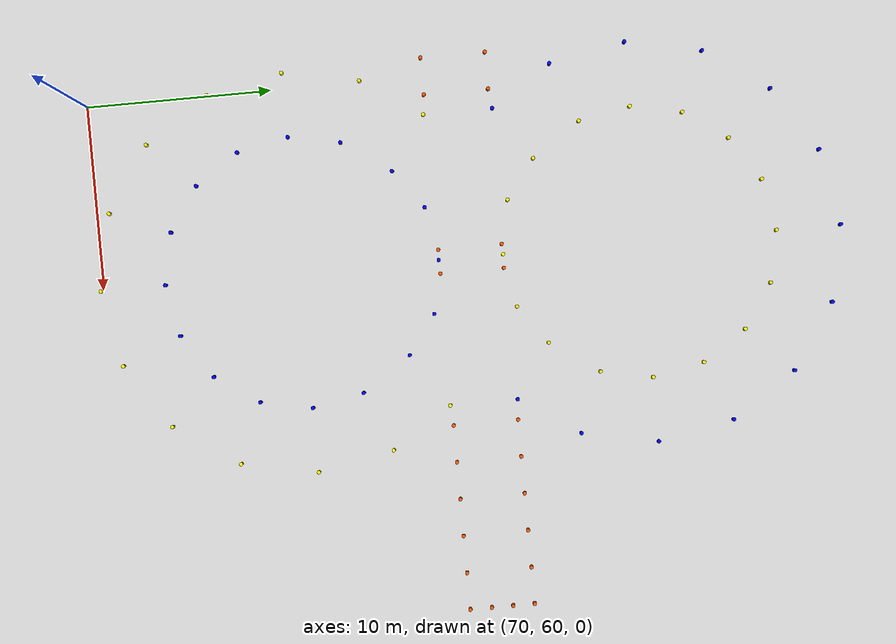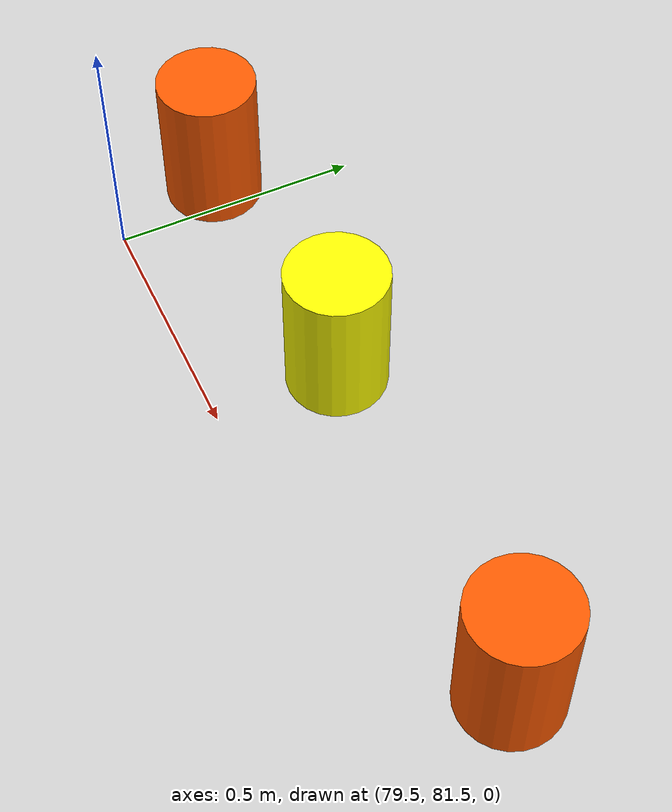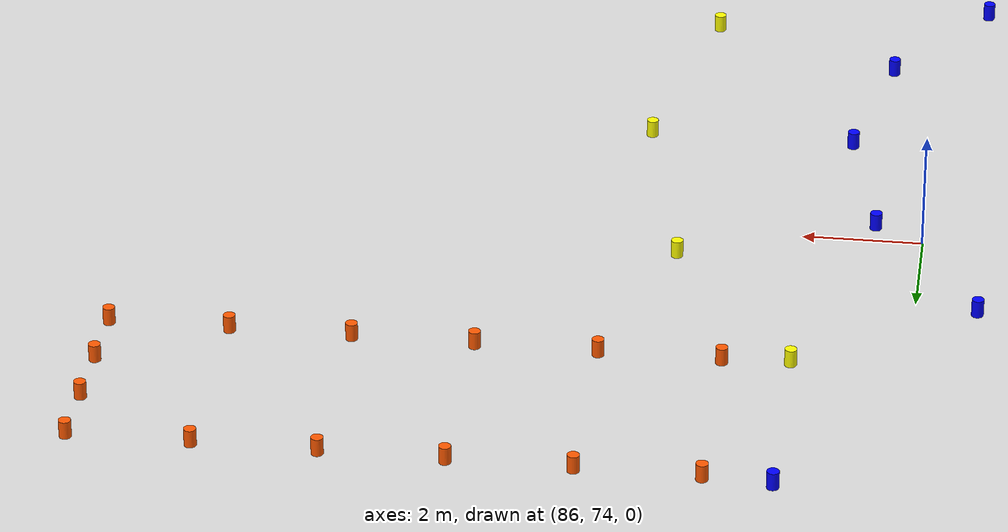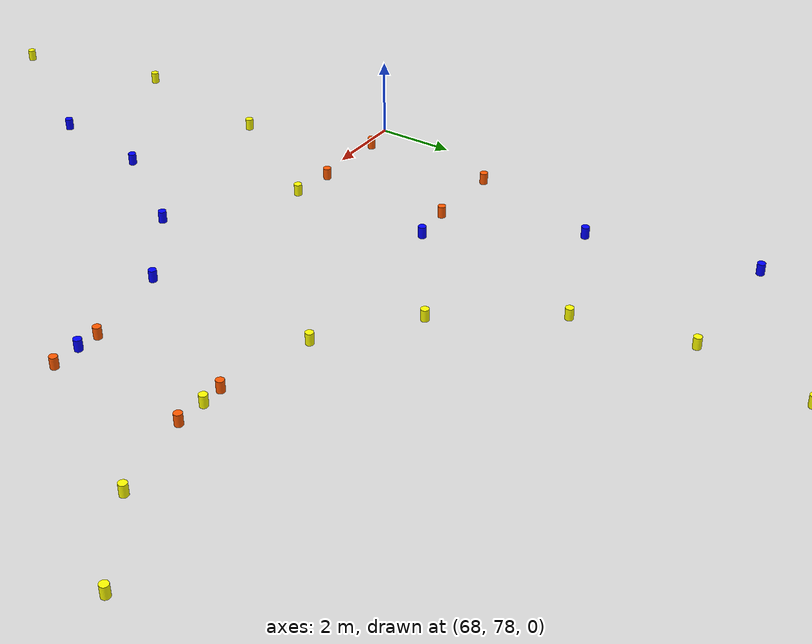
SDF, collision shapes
<?xml version="1.0"?>
<sdf version="1.7">
  <model name="track_skidpad">
    <static>true</static>

    <include>
      <uri>model://cone_yellow</uri>
      <name>cone_yellow_001</name>
      <pose>80.000 81.750 0.000 0 0 0.000</pose>
    </include>
    <include>
      <uri>model://cone_blue</uri>
      <name>cone_blue_001</name>
      <pose>80.000 78.250 0.000 0 0 0.000</pose>
    </include>
    <include>
      <uri>model://cone_orange</uri>
      <name>cone_orange_001</name>
      <pose>79.439 78.274 0.000 0 0 0.000</pose>
    </include>
    <include>
      <uri>model://cone_orange</uri>
      <name>cone_orange_002</name>
      <pose>79.439 81.726 0.000 0 0 0.000</pose>
    </include>
    <include>
      <uri>model://cone_orange</uri>
      <name>cone_orange_003</name>
      <pose>80.739 81.726 0.000 0 0 0.000</pose>
    </include>
    <include>
      <uri>model://cone_orange</uri>
      <name>cone_orange_004</name>
      <pose>80.739 78.274 0.000 0 0 0.000</pose>
    </include>
    <include>
      <uri>model://cone_orange</uri>
      <name>cone_orange_005</name>
      <pose>71.000 78.250 0.000 0 0 0.000</pose>
    </include>
    <include>
      <uri>model://cone_orange</uri>
      <name>cone_orange_006</name>
      <pose>69.000 78.250 0.000 0 0 0.000</pose>
    </include>
    <include>
      <uri>model://cone_orange</uri>
      <name>cone_orange_007</name>
      <pose>71.000 81.750 0.000 0 0 0.000</pose>
    </include>
    <include>
      <uri>model://cone_orange</uri>
      <name>cone_orange_008</name>
      <pose>69.000 81.750 0.000 0 0 0.000</pose>
    </include>
    <include>
      <uri>model://cone_yellow</uri>
      <name>cone_yellow_002</name>
      <pose>87.898 78.166 0.000 0 0 0.000</pose>
    </include>
    <include>
      <uri>model://cone_yellow</uri>
      <name>cone_yellow_003</name>
      <pose>90.038 74.900 0.000 0 0 0.000</pose>
    </include>
    <include>
      <uri>model://cone_yellow</uri>
      <name>cone_yellow_004</name>
      <pose>90.861 70.752 0.000 0 0 0.000</pose>
    </include>
    <include>
      <uri>model://cone_yellow</uri>
      <name>cone_yellow_005</name>
      <pose>90.039 66.603 0.000 0 0 0.000</pose>
    </include>
    <include>
      <uri>model://cone_yellow</uri>
      <name>cone_yellow_006</name>
      <pose>87.694 63.083 0.000 0 0 0.000</pose>
    </include>
    <include>
      <uri>model://cone_yellow</uri>
      <name>cone_yellow_007</name>
      <pose>84.183 60.725 0.000 0 0 0.000</pose>
    </include>
    <include>
      <uri>model://cone_yellow</uri>
      <name>cone_yellow_008</name>
      <pose>80.037 59.888 0.000 0 0 0.000</pose>
    </include>
    <include>
      <uri>model://cone_yellow</uri>
      <name>cone_yellow_009</name>
      <pose>75.885 60.697 0.000 0 0 0.000</pose>
    </include>
    <include>
      <uri>model://cone_yellow</uri>
      <name>cone_yellow_010</name>
      <pose>72.358 63.031 0.000 0 0 0.000</pose>
    </include>
    <include>
      <uri>model://cone_yellow</uri>
      <name>cone_yellow_011</name>
      <pose>69.989 66.535 0.000 0 0 0.000</pose>
    </include>
    <include>
      <uri>model://cone_yellow</uri>
      <name>cone_yellow_012</name>
      <pose>69.138 70.678 0.000 0 0 0.000</pose>
    </include>
    <include>
      <uri>model://cone_yellow</uri>
      <name>cone_yellow_013</name>
      <pose>69.934 74.832 0.000 0 0 0.000</pose>
    </include>
    <include>
      <uri>model://cone_yellow</uri>
      <name>cone_yellow_014</name>
      <pose>72.074 78.125 0.000 0 0 0.000</pose>
    </include>
    <include>
      <uri>model://cone_blue</uri>
      <name>cone_blue_002</name>
      <pose>84.988 76.221 0.000 0 0 0.000</pose>
    </include>
    <include>
      <uri>model://cone_blue</uri>
      <name>cone_blue_003</name>
      <pose>86.803 73.564 0.000 0 0 0.000</pose>
    </include>
    <include>
      <uri>model://cone_blue</uri>
      <name>cone_blue_004</name>
      <pose>87.361 70.751 0.000 0 0 0.000</pose>
    </include>
    <include>
      <uri>model://cone_blue</uri>
      <name>cone_blue_005</name>
      <pose>86.804 67.939 0.000 0 0 0.000</pose>
    </include>
    <include>
      <uri>model://cone_blue</uri>
      <name>cone_blue_006</name>
      <pose>85.214 65.553 0.000 0 0 0.000</pose>
    </include>
    <include>
      <uri>model://cone_blue</uri>
      <name>cone_blue_007</name>
      <pose>82.834 63.955 0.000 0 0 0.000</pose>
    </include>
    <include>
      <uri>model://cone_blue</uri>
      <name>cone_blue_008</name>
      <pose>80.024 63.388 0.000 0 0 0.000</pose>
    </include>
    <include>
      <uri>model://cone_blue</uri>
      <name>cone_blue_009</name>
      <pose>77.210 63.937 0.000 0 0 0.000</pose>
    </include>
    <include>
      <uri>model://cone_blue</uri>
      <name>cone_blue_010</name>
      <pose>74.819 65.520 0.000 0 0 0.000</pose>
    </include>
    <include>
      <uri>model://cone_blue</uri>
      <name>cone_blue_011</name>
      <pose>73.214 67.895 0.000 0 0 0.000</pose>
    </include>
    <include>
      <uri>model://cone_blue</uri>
      <name>cone_blue_012</name>
      <pose>72.638 70.704 0.000 0 0 0.000</pose>
    </include>
    <include>
      <uri>model://cone_blue</uri>
      <name>cone_blue_013</name>
      <pose>73.178 73.519 0.000 0 0 0.000</pose>
    </include>
    <include>
      <uri>model://cone_blue</uri>
      <name>cone_blue_014</name>
      <pose>74.971 76.161 0.000 0 0 0.000</pose>
    </include>
    <include>
      <uri>model://cone_yellow</uri>
      <name>cone_yellow_015</name>
      <pose>84.988 83.779 0.000 0 0 0.000</pose>
    </include>
    <include>
      <uri>model://cone_yellow</uri>
      <name>cone_yellow_016</name>
      <pose>86.803 86.436 0.000 0 0 0.000</pose>
    </include>
    <include>
      <uri>model://cone_yellow</uri>
      <name>cone_yellow_017</name>
      <pose>87.361 89.249 0.000 0 0 0.000</pose>
    </include>
    <include>
      <uri>model://cone_yellow</uri>
      <name>cone_yellow_018</name>
      <pose>86.804 92.061 0.000 0 0 0.000</pose>
    </include>
    <include>
      <uri>model://cone_yellow</uri>
      <name>cone_yellow_019</name>
      <pose>85.214 94.447 0.000 0 0 0.000</pose>
    </include>
    <include>
      <uri>model://cone_yellow</uri>
      <name>cone_yellow_020</name>
      <pose>82.834 96.045 0.000 0 0 0.000</pose>
    </include>
    <include>
      <uri>model://cone_yellow</uri>
      <name>cone_yellow_021</name>
      <pose>80.024 96.612 0.000 0 0 0.000</pose>
    </include>
    <include>
      <uri>model://cone_yellow</uri>
      <name>cone_yellow_022</name>
      <pose>77.210 96.063 0.000 0 0 0.000</pose>
    </include>
    <include>
      <uri>model://cone_yellow</uri>
      <name>cone_yellow_023</name>
      <pose>74.819 94.480 0.000 0 0 0.000</pose>
    </include>
    <include>
      <uri>model://cone_yellow</uri>
      <name>cone_yellow_024</name>
      <pose>73.214 92.105 0.000 0 0 0.000</pose>
    </include>
    <include>
      <uri>model://cone_yellow</uri>
      <name>cone_yellow_025</name>
      <pose>72.638 89.296 0.000 0 0 0.000</pose>
    </include>
    <include>
      <uri>model://cone_yellow</uri>
      <name>cone_yellow_026</name>
      <pose>73.178 86.481 0.000 0 0 0.000</pose>
    </include>
    <include>
      <uri>model://cone_yellow</uri>
      <name>cone_yellow_027</name>
      <pose>74.971 83.839 0.000 0 0 0.000</pose>
    </include>
    <include>
      <uri>model://cone_blue</uri>
      <name>cone_blue_015</name>
      <pose>87.898 81.834 0.000 0 0 0.000</pose>
    </include>
    <include>
      <uri>model://cone_blue</uri>
      <name>cone_blue_016</name>
      <pose>90.038 85.100 0.000 0 0 0.000</pose>
    </include>
    <include>
      <uri>model://cone_blue</uri>
      <name>cone_blue_017</name>
      <pose>90.861 89.248 0.000 0 0 0.000</pose>
    </include>
    <include>
      <uri>model://cone_blue</uri>
      <name>cone_blue_018</name>
      <pose>90.039 93.397 0.000 0 0 0.000</pose>
    </include>
    <include>
      <uri>model://cone_blue</uri>
      <name>cone_blue_019</name>
      <pose>87.694 96.917 0.000 0 0 0.000</pose>
    </include>
    <include>
      <uri>model://cone_blue</uri>
      <name>cone_blue_020</name>
      <pose>84.183 99.275 0.000 0 0 0.000</pose>
    </include>
    <include>
      <uri>model://cone_blue</uri>
      <name>cone_blue_021</name>
      <pose>80.037 100.112 0.000 0 0 0.000</pose>
    </include>
    <include>
      <uri>model://cone_blue</uri>
      <name>cone_blue_022</name>
      <pose>75.885 99.303 0.000 0 0 0.000</pose>
    </include>
    <include>
      <uri>model://cone_blue</uri>
      <name>cone_blue_023</name>
      <pose>72.358 96.969 0.000 0 0 0.000</pose>
    </include>
    <include>
      <uri>model://cone_blue</uri>
      <name>cone_blue_024</name>
      <pose>69.989 93.465 0.000 0 0 0.000</pose>
    </include>
    <include>
      <uri>model://cone_blue</uri>
      <name>cone_blue_025</name>
      <pose>69.138 89.322 0.000 0 0 0.000</pose>
    </include>
    <include>
      <uri>model://cone_blue</uri>
      <name>cone_blue_026</name>
      <pose>69.934 85.168 0.000 0 0 0.000</pose>
    </include>
    <include>
      <uri>model://cone_blue</uri>
      <name>cone_blue_027</name>
      <pose>72.074 81.875 0.000 0 0 0.000</pose>
    </include>
    <include>
      <uri>model://cone_yellow</uri>
      <name>cone_yellow_028</name>
      <pose>77.087 82.250 0.000 0 0 0.000</pose>
    </include>
    <include>
      <uri>model://cone_yellow</uri>
      <name>cone_yellow_029</name>
      <pose>82.887 82.250 0.000 0 0 0.000</pose>
    </include>
    <include>
      <uri>model://cone_blue</uri>
      <name>cone_blue_028</name>
      <pose>77.087 77.750 0.000 0 0 0.000</pose>
    </include>
    <include>
      <uri>model://cone_blue</uri>
      <name>cone_blue_029</name>
      <pose>82.887 77.750 0.000 0 0 0.000</pose>
    </include>
    <include>
      <uri>model://cone_orange</uri>
      <name>cone_orange_009</name>
      <pose>89.000 81.750 0.000 0 0 0.000</pose>
    </include>
    <include>
      <uri>model://cone_orange</uri>
      <name>cone_orange_010</name>
      <pose>90.997 81.750 0.000 0 0 0.000</pose>
    </include>
    <include>
      <uri>model://cone_orange</uri>
      <name>cone_orange_011</name>
      <pose>93.001 81.750 0.000 0 0 0.000</pose>
    </include>
    <include>
      <uri>model://cone_orange</uri>
      <name>cone_orange_012</name>
      <pose>95.007 81.750 0.000 0 0 0.000</pose>
    </include>
    <include>
      <uri>model://cone_orange</uri>
      <name>cone_orange_013</name>
      <pose>97.013 81.750 0.000 0 0 0.000</pose>
    </include>
    <include>
      <uri>model://cone_orange</uri>
      <name>cone_orange_014</name>
      <pose>99.000 81.750 0.000 0 0 0.000</pose>
    </include>
    <include>
      <uri>model://cone_orange</uri>
      <name>cone_orange_015</name>
      <pose>89.000 78.250 0.000 0 0 0.000</pose>
    </include>
    <include>
      <uri>model://cone_orange</uri>
      <name>cone_orange_016</name>
      <pose>90.997 78.250 0.000 0 0 0.000</pose>
    </include>
    <include>
      <uri>model://cone_orange</uri>
      <name>cone_orange_017</name>
      <pose>93.001 78.250 0.000 0 0 0.000</pose>
    </include>
    <include>
      <uri>model://cone_orange</uri>
      <name>cone_orange_018</name>
      <pose>95.007 78.250 0.000 0 0 0.000</pose>
    </include>
    <include>
      <uri>model://cone_orange</uri>
      <name>cone_orange_019</name>
      <pose>97.013 78.250 0.000 0 0 0.000</pose>
    </include>
    <include>
      <uri>model://cone_orange</uri>
      <name>cone_orange_020</name>
      <pose>99.000 78.250 0.000 0 0 0.000</pose>
    </include>
    <include>
      <uri>model://cone_orange</uri>
      <name>cone_orange_021</name>
      <pose>99.000 80.580 0.000 0 0 0.000</pose>
    </include>
    <include>
      <uri>model://cone_orange</uri>
      <name>cone_orange_022</name>
      <pose>99.000 79.420 0.000 0 0 0.000</pose>
    </include>

  </model>
</sdf>

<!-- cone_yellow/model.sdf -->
<sdf version="1.6">
  <model name="cone_yellow">
    <static>1</static>
    <link name="link">

      <visual name="visual">
        <pose>0 0 0 0 0 0</pose>
        <geometry>
          <mesh>
            <uri>model://cone_yellow/meshes/cone.stl</uri>
            <scale>0.005 0.005 0.005</scale>
          </mesh>
        </geometry>
        <material>
          <ambient>1.0 1.0 0.0 1</ambient>
          <diffuse>1.0 1.0 0.0 1</diffuse>
        </material>
      </visual>

      <collision name="collision">
        <pose>0 0 0.15 0 0 0</pose>
        <geometry>
          <cylinder>
            <radius>0.1</radius>
            <length>0.3</length>
          </cylinder>
        </geometry>
        <surface>
          <friction>
            <ode>
              <mu>0.9</mu> <mu2>0.9</mu2> </ode>
          </friction>
        </surface>
      </collision>

      <inertial>
        <pose>0 0 0.05 0 0 0</pose>
        <mass>1</mass>
        <inertia>
          <ixx>0.01</ixx> <iyy>0.01</iyy> <izz>0.005</izz>
          <ixy>0.0</ixy> <ixz>0.0</ixz> <iyz>0.0</iyz>
        </inertia>
      </inertial>

    </link>
  </model>
</sdf>

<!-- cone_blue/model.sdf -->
<sdf version="1.6">
  <model name="cone_blue">
    <static>1</static>
    <link name="link">

      <inertial>
        <pose>0 0 0.05 0 0 0</pose> <mass>1</mass>
        <inertia>
          <ixx>0.01</ixx> <iyy>0.01</iyy> <izz>0.005</izz>
          <ixy>0.0</ixy> <ixz>0.0</ixz> <iyz>0.0</iyz>
        </inertia>
      </inertial>

      <collision name="collision">
        <pose>0 0 0.15 0 0 0</pose>
        <geometry>
          <cylinder>
            <radius>0.1</radius>
            <length>0.3</length>
          </cylinder>
        </geometry>
      </collision>

      <visual name="visual">
        <pose>0 0 0 0 0 0</pose>
        <geometry>
          <mesh>
            <uri>model://cone_blue/meshes/cone.stl</uri>
            <scale>0.005 0.005 0.005</scale>
          </mesh>
        </geometry>
        <material>
          <ambient>0.0 0.0 1.0 1</ambient>
          <diffuse>0.0 0.0 1.0 1</diffuse>
        </material>
      </visual>

    </link>
  </model>
</sdf>

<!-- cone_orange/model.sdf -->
<sdf version="1.6">
  <model name="cone_orange">
    <static>1</static>
    <link name="link">

      <visual name="visual">
        <pose>0 0 0 0 0 0</pose>
        <geometry>
          <mesh>
            <uri>model://cone_orange/meshes/cone.stl</uri>
            <scale>0.005 0.005 0.005</scale>
          </mesh>
        </geometry>
        <material>
          <ambient>1.0 0.35 0.0 1</ambient>
          <diffuse>1.0 0.35 0.0 1</diffuse>
        </material>
      </visual>

      <collision name="collision">
        <pose>0 0 0.15 0 0 0</pose>
        <geometry>
          <cylinder>
            <radius>0.1</radius>
            <length>0.3</length>
          </cylinder>
        </geometry>
        <surface>
          <friction>
            <ode>
              <mu>0.9</mu> <mu2>0.9</mu2>
            </ode>
          </friction>
        </surface>
      </collision>

      <inertial>
        <pose>0 0 0.05 0 0 0</pose> <mass>1.0</mass>
        <inertia>
          <ixx>0.01</ixx> <iyy>0.01</iyy> <izz>0.005</izz>
          <ixy>0.0</ixy> <ixz>0.0</ixz> <iyz>0.0</iyz>
        </inertia>
      </inertial>

    </link>
  </model>
</sdf>
